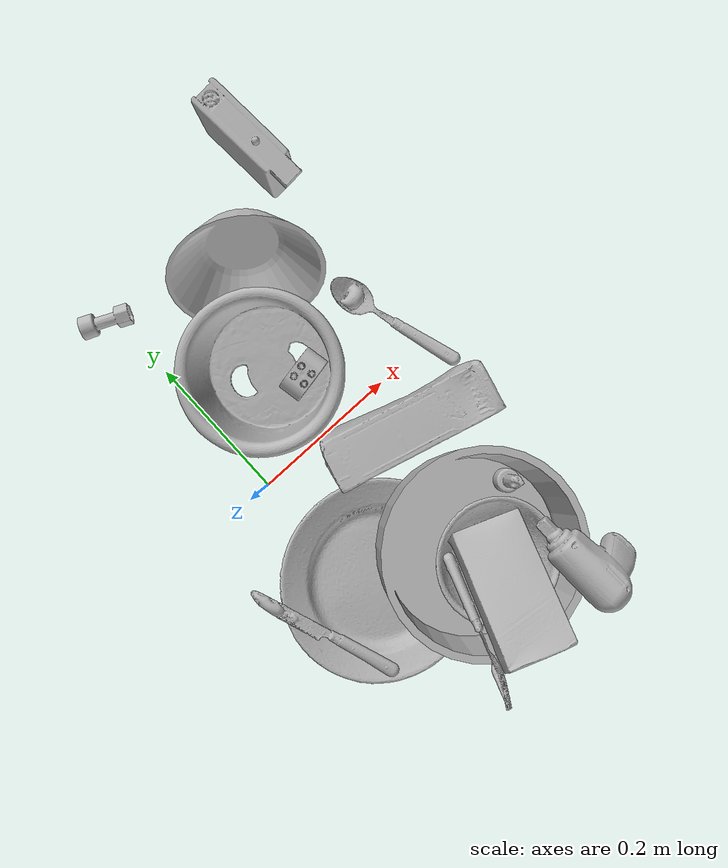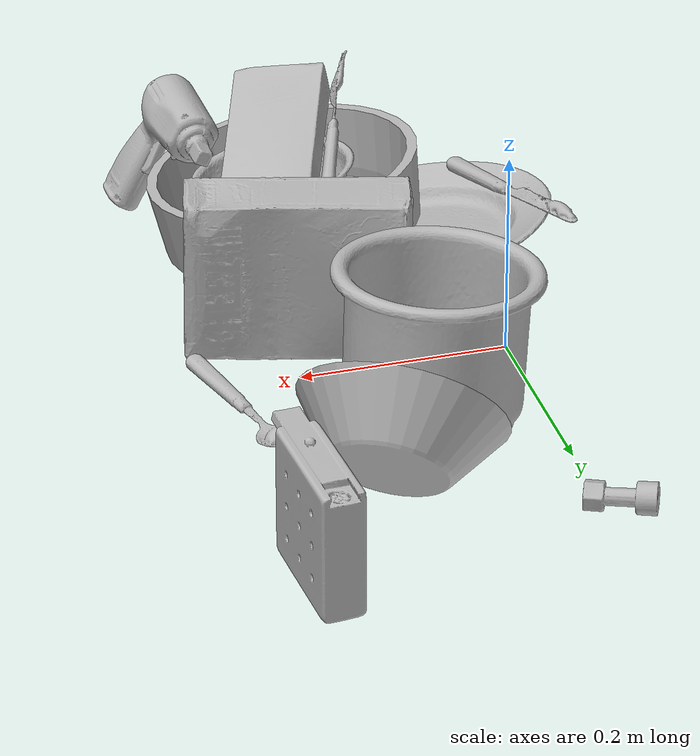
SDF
<sdf version="1.4">
  <world name="default">
    <light name="light1" type="point">
      <pose>0 0 1 0 0 0</pose>
      <diffuse>3 3 3 1</diffuse>
      <specular>3 3 3 1</specular>
    </light>
    <light name="light2" type="point">
      <pose>0 0.5 2 0 0 0</pose>
      <diffuse>1 1 1 1</diffuse>
      <specular>1 1 1 1</specular>
    </light>
    <light name="light3" type="point">
      <pose>0 0.5 2 0 0 0</pose>
      <diffuse>3 3 3 1</diffuse>
      <specular>3 3 3 1</specular>
    </light>
    <scene>
      <ambient>0.7 0.7 0.7</ambient>
    </scene>
    <model name="plate1">
      <link name="link_plate1">
        <collision name="default">
          <geometry>
            <mesh>
              <uri>model://plate/collision_meshes/collision.obj</uri>
              <scale>1.0 1.0 1.0</scale>
            </mesh>
          </geometry>
          <surface>
            <friction>
              <ode>
                <mu>0.5</mu>
                <mu2>0.5</mu2>
              </ode>
            </friction>
          <contact>
        <ode>
            <max_vel>0</max_vel>
            <min_depth>0.0001</min_depth>
            <kp>1e8</kp>
        </ode>
    </contact></surface>
        </collision>
        <visual name="default">
          <geometry>
            <mesh>
              <uri>model://plate/visual_meshes/visual.dae</uri>
              <scale>1.0 1.0 1.0</scale>
            </mesh>
          </geometry>
        </visual>
        <inertial>
          <mass>0.11001742631196976</mass>
          <pose>-0.0006044686888344586 0.000278257648460567 -0.0010561998933553696 0.00221878912528286 -0.0032254756485070152 0.4526088917028743</pose>
          <inertia>
            <ixx>0.00051466376</ixx>
            <iyy>0.0005097412</iyy>
            <izz>0.0010066056</izz>
            <ixy>0</ixy>
            <ixz>0</ixz>
            <iyz>0</iyz>
          </inertia>
        </inertial>
      </link>
      <pose>0.028337204828858376 -0.18616735935211182 0.028951900079846382 -0.05131962451191956 0.1959186007415022 -0.9111378049618767</pose>
    </model>
    <model name="plate2">
      <link name="link_plate2">
        <collision name="default">
          <geometry>
            <mesh>
              <uri>model://pan_tefal/collision_meshes/collision.obj</uri>
              <scale>1.0 1.0 1.0</scale>
            </mesh>
          </geometry>
          <surface>
            <friction>
              <ode>
                <mu>0.5</mu>
                <mu2>0.5</mu2>
              </ode>
            </friction>
          <contact>
        <ode>
            <max_vel>0</max_vel>
            <min_depth>0.0001</min_depth>
            <kp>1e8</kp>
        </ode>
    </contact></surface>
        </collision>
        <visual name="default">
          <geometry>
            <mesh>
              <uri>model://pan_tefal/visual_meshes/visual.dae</uri>
              <scale>1.0 1.0 1.0</scale>
            </mesh>
          </geometry>
        </visual>
        <inertial>
          <mass>1.457576870918274</mass>
          <pose>-0.00018002426077146083 3.279360316810198e-05 -0.008514936082065105 0.0008190306735146073 -0.00033013365411173643 -0.33185917339097665</pose>
          <inertia>
            <ixx>0.010061583</ixx>
            <iyy>0.01012645</iyy>
            <izz>0.01852144</izz>
            <ixy>0</ixy>
            <ixz>0</ixz>
            <iyz>0</iyz>
          </inertia>
        </inertial>
      </link>
      <pose>0.14705725014209747 -0.23748661577701569 0.05673494189977646 0.11504628215935589 0.12659082961725682 0.06018741386620259</pose>
    </model>
    <model name="bowl1">
      <link name="link_bowl1">
        <collision name="default">
          <geometry>
            <mesh>
              <uri>model://bowl_a/collision_meshes/collision.obj</uri>
              <scale>1.0 1.0 1.0</scale>
            </mesh>
          </geometry>
          <surface>
            <friction>
              <ode>
                <mu>0.5</mu>
                <mu2>0.5</mu2>
              </ode>
            </friction>
          <contact>
        <ode>
            <max_vel>0</max_vel>
            <min_depth>0.0001</min_depth>
            <kp>1e8</kp>
        </ode>
    </contact></surface>
        </collision>
        <visual name="default">
          <geometry>
            <mesh>
              <uri>model://bowl_a/visual_meshes/visual.dae</uri>
              <scale>1.0 1.0 1.0</scale>
            </mesh>
          </geometry>
        </visual>
        <inertial>
          <mass>0.29746556282043457</mass>
          <pose>0.0002786756958812475 4.7311452362919226e-05 -0.0013765294570475817 -0.0009805438325310402 -0.001093816410149737 -0.19123071729823712</pose>
          <inertia>
            <ixx>0.0008468981</ixx>
            <iyy>0.00085209764</iyy>
            <izz>0.0015062407</izz>
            <ixy>0</ixy>
            <ixz>0</ixz>
            <iyz>0</iyz>
          </inertia>
        </inertial>
      </link>
      <pose>0.1748204529285431 0.22752200067043304 0.06380802392959595 -0.15608975593865793 -0.9523729750508118 1.2269654598796238</pose>
    </model>
    <model name="bowl2">
      <link name="link_bowl2">
        <collision name="default">
          <geometry>
            <mesh>
              <uri>model://bowl/collision_meshes/collision.obj</uri>
              <scale>1.0 1.0 1.0</scale>
            </mesh>
          </geometry>
          <surface>
            <friction>
              <ode>
                <mu>0.5</mu>
                <mu2>0.5</mu2>
              </ode>
            </friction>
          <contact>
        <ode>
            <max_vel>0</max_vel>
            <min_depth>0.0001</min_depth>
            <kp>1e8</kp>
        </ode>
    </contact></surface>
        </collision>
        <visual name="default">
          <geometry>
            <mesh>
              <uri>model://bowl/visual_meshes/visual.dae</uri>
              <scale>1.0 1.0 1.0</scale>
            </mesh>
          </geometry>
        </visual>
        <inertial>
          <mass>0.12348172068595886</mass>
          <pose>0.0002044529828708619 -0.0010302055161446333 -0.0008042656118050218 -0.01576411854188812 0.014546757923928972 0.7140383762832406</pose>
          <inertia>
            <ixx>0.0002836472</ixx>
            <iyy>0.00027730947</iyy>
            <izz>0.00047719217</izz>
            <ixy>0</ixy>
            <ixz>0</ixz>
            <iyz>0</iyz>
          </inertia>
        </inertial>
      </link>
      <pose>0.15307871997356415 -0.2580987215042114 0.051310546696186066 0.04128068416711108 -0.18208633499467405 2.2374106003892935</pose>
    </model>
    <model name="silverware1">
      <link name="link_silverware1">
        <collision name="default">
          <geometry>
            <mesh>
              <uri>model://spoon/collision_meshes/collision.obj</uri>
              <scale>1.0 1.0 1.0</scale>
            </mesh>
          </geometry>
          <surface>
            <friction>
              <ode>
                <mu>0.5</mu>
                <mu2>0.5</mu2>
              </ode>
            </friction>
          <contact>
        <ode>
            <max_vel>0</max_vel>
            <min_depth>0.0001</min_depth>
            <kp>1e8</kp>
        </ode>
    </contact></surface>
        </collision>
        <visual name="default">
          <geometry>
            <mesh>
              <uri>model://spoon/visual_meshes/visual.dae</uri>
              <scale>1.0 1.0 1.0</scale>
            </mesh>
          </geometry>
        </visual>
        <inertial>
          <mass>0.03284037858247757</mass>
          <pose>-0.005526319611817598 -0.001603417214937508 -0.000727165665011853 0.03521671059584429 -0.039065856285187314 0.0061506144474233635</pose>
          <inertia>
            <ixx>1.8266356e-06</ixx>
            <iyy>0.00012495652</iyy>
            <izz>0.00012585736</izz>
            <ixy>0</ixy>
            <ixz>0</ixz>
            <iyz>0</iyz>
          </inertia>
        </inertial>
      </link>
      <pose>0.26391223073005676 0.04603327810764313 0.008385264314711094 0.006728850887120785 0.02689299486917776 1.8478797729652534</pose>
    </model>
    <model name="box1">
      <link name="link_box1">
        <collision name="default">
          <geometry>
            <mesh>
              <uri>model://cracker_box/collision_meshes/collision.obj</uri>
              <scale>1.0 1.0 1.0</scale>
            </mesh>
          </geometry>
          <surface>
            <friction>
              <ode>
                <mu>0.5</mu>
                <mu2>0.5</mu2>
              </ode>
            </friction>
          <contact>
        <ode>
            <max_vel>0</max_vel>
            <min_depth>0.0001</min_depth>
            <kp>1e8</kp>
        </ode>
    </contact></surface>
        </collision>
        <visual name="default">
          <geometry>
            <mesh>
              <uri>model://cracker_box/visual_meshes/visual.dae</uri>
              <scale>1.0 1.0 1.0</scale>
            </mesh>
          </geometry>
        </visual>
        <inertial>
          <mass>2.434305191040039</mass>
          <pose>0.0009464126778766513 0.0002543424488976598 -0.0017029534792527556 -0.0003162073658586955 -0.011106488669321329 0.0025467952332158075</pose>
          <inertia>
            <ixx>0.0061917845</ixx>
            <iyy>0.010223853</iyy>
            <izz>0.014590379</izz>
            <ixy>0</ixy>
            <ixz>0</ixz>
            <iyz>0</iyz>
          </inertia>
        </inertial>
      </link>
      <pose>0.18640799820423126 -0.0578545518219471 0.08175764977931976 1.545234597728525 0.009040078170302309 2.8944011895616244</pose>
    </model>
    <model name="box2">
      <link name="link_box2">
        <collision name="default">
          <geometry>
            <mesh>
              <uri>model://sugar_box/collision_meshes/collision.obj</uri>
              <scale>1.0 1.0 1.0</scale>
            </mesh>
          </geometry>
          <surface>
            <friction>
              <ode>
                <mu>0.5</mu>
                <mu2>0.5</mu2>
              </ode>
            </friction>
          <contact>
        <ode>
            <max_vel>0</max_vel>
            <min_depth>0.0001</min_depth>
            <kp>1e8</kp>
        </ode>
    </contact></surface>
        </collision>
        <visual name="default">
          <geometry>
            <mesh>
              <uri>model://sugar_box/visual_meshes/visual.dae</uri>
              <scale>1.0 1.0 1.0</scale>
            </mesh>
          </geometry>
        </visual>
        <inertial>
          <mass>0.5700510144233704</mass>
          <pose>0.0010343727190047503 3.849109634757042e-05 -0.00036364805418998003 -0.00040462615490547663 0.0010506634056045778 0.0026153790218534064</pose>
          <inertia>
            <ixx>0.00047496508</ixx>
            <iyy>0.0015351841</iyy>
            <izz>0.0018377992</izz>
            <ixy>0</ixy>
            <ixz>0</ixz>
            <iyz>0</iyz>
          </inertia>
        </inertial>
      </link>
      <pose>0.14427754282951355 -0.2933700382709503 0.09047804772853851 0.14294048753754665 0.2822911635875591 1.2148441857092764</pose>
    </model>
    <model name="cup1">
      <link name="link_cup1">
        <collision name="default">
          <geometry>
            <mesh>
              <uri>model://i_cups/collision_meshes/collision.obj</uri>
              <scale>2.0 2.0 2.0</scale>
            </mesh>
          </geometry>
          <surface>
            <friction>
              <ode>
                <mu>0.5</mu>
                <mu2>0.5</mu2>
              </ode>
            </friction>
          <contact>
        <ode>
            <max_vel>0</max_vel>
            <min_depth>0.0001</min_depth>
            <kp>1e8</kp>
        </ode>
    </contact></surface>
        </collision>
        <visual name="default">
          <geometry>
            <mesh>
              <uri>model://i_cups/visual_meshes/visual.dae</uri>
              <scale>2.0 2.0 2.0</scale>
            </mesh>
          </geometry>
        </visual>
        <inertial>
          <mass>0.8749163746833801</mass>
          <pose>0.0002248019736725837 0.0003359491820447147 -0.0017158064292743802 -0.028982988446176382 -0.03987323668700188 -0.3459135059395342</pose>
          <inertia>
            <ixx>0.0048453393</ixx>
            <iyy>0.0048880302</iyy>
            <izz>0.0054154512</izz>
            <ixy>0</ixy>
            <ixz>0</ixz>
            <iyz>0</iyz>
          </inertia>
        </inertial>
      </link>
      <pose>0.10229910165071487 0.1062382161617279 0.08208061009645462 -0.10133458599868372 0.004933015930208881 2.5000925828218543</pose>
    </model>
    <model name="silverware2">
      <link name="link_silverware2">
        <collision name="default">
          <geometry>
            <mesh>
              <uri>model://fork/collision_meshes/collision.obj</uri>
              <scale>1.0 1.0 1.0</scale>
            </mesh>
          </geometry>
          <surface>
            <friction>
              <ode>
                <mu>0.5</mu>
                <mu2>0.5</mu2>
              </ode>
            </friction>
          <contact>
        <ode>
            <max_vel>0</max_vel>
            <min_depth>0.0001</min_depth>
            <kp>1e8</kp>
        </ode>
    </contact></surface>
        </collision>
        <visual name="default">
          <geometry>
            <mesh>
              <uri>model://fork/visual_meshes/visual.dae</uri>
              <scale>1.0 1.0 1.0</scale>
            </mesh>
          </geometry>
        </visual>
        <inertial>
          <mass>0.021080315113067627</mass>
          <pose>-0.02957003377377987 0.00046588227269239724 0.0003218860656488687 -0.013550583544297463 -0.010977830979267335 0.014453899239778455</pose>
          <inertia>
            <ixx>7.3898417e-07</ixx>
            <iyy>5.503463e-05</iyy>
            <izz>5.5365177e-05</izz>
            <ixy>0</ixy>
            <ixz>0</ixz>
            <iyz>0</iyz>
          </inertia>
        </inertial>
      </link>
      <pose>0.08411167562007904 -0.3007666766643524 0.0954471006989479 1.8937662541714584 -0.2796067053732354 -1.900491572427257</pose>
    </model>
    <model name="silverware3">
      <link name="link_silverware3">
        <collision name="default">
          <geometry>
            <mesh>
              <uri>model://knife/collision_meshes/collision.obj</uri>
              <scale>1.0 1.0 1.0</scale>
            </mesh>
          </geometry>
          <surface>
            <friction>
              <ode>
                <mu>0.5</mu>
                <mu2>0.5</mu2>
              </ode>
            </friction>
          <contact>
        <ode>
            <max_vel>0</max_vel>
            <min_depth>0.0001</min_depth>
            <kp>1e8</kp>
        </ode>
    </contact></surface>
        </collision>
        <visual name="default">
          <geometry>
            <mesh>
              <uri>model://knife/visual_meshes/visual.dae</uri>
              <scale>1.0 1.0 1.0</scale>
            </mesh>
          </geometry>
        </visual>
        <inertial>
          <mass>0.03557601198554039</mass>
          <pose>-0.023785259574651718 0.0015275123296305537 5.062016498413868e-05 0.07305791577183936 0.01724842049726123 -0.007409813921982597</pose>
          <inertia>
            <ixx>1.0097915e-06</ixx>
            <iyy>0.00013667726</iyy>
            <izz>0.00013700248</izz>
            <ixy>0</ixy>
            <ixz>0</ixz>
            <iyz>0</iyz>
          </inertia>
        </inertial>
      </link>
      <pose>-0.06589128822088242 -0.18636934459209442 0.059412334114313126 -3.104901597604266 -0.14879264883320206 1.8769378986587169</pose>
    </model>
    <model name="toy1">
      <link name="link_toy1">
        <collision name="default">
          <geometry>
            <mesh>
              <uri>model://b_toy_airplane/collision_meshes/collision.obj</uri>
              <scale>1.0 1.0 1.0</scale>
            </mesh>
          </geometry>
          <surface>
            <friction>
              <ode>
                <mu>0.5</mu>
                <mu2>0.5</mu2>
              </ode>
            </friction>
          <contact>
        <ode>
            <max_vel>0</max_vel>
            <min_depth>0.0001</min_depth>
            <kp>1e8</kp>
        </ode>
    </contact></surface>
        </collision>
        <visual name="default">
          <geometry>
            <mesh>
              <uri>model://b_toy_airplane/visual_meshes/visual.dae</uri>
              <scale>1.0 1.0 1.0</scale>
            </mesh>
          </geometry>
        </visual>
        <inertial>
          <mass>0.2131570726633072</mass>
          <pose>0.005081363953649998 0.00401558680459857 0.00954306498169899 -0.040018114912876775 -0.04022188568687408 -0.5601502887595425</pose>
          <inertia>
            <ixx>0.00039573</ixx>
            <iyy>0.00015817716</iyy>
            <izz>0.00049232744</izz>
            <ixy>0</ixy>
            <ixz>0</ixz>
            <iyz>0</iyz>
          </inertia>
        </inertial>
      </link>
      <pose>0.23450033366680145 -0.3490745425224304 0.07837926596403122 1.131255177289332 0.051315257790849875 1.6303220509596046</pose>
    </model>
    <model name="toy2">
      <link name="link_toy2">
        <collision name="default">
          <geometry>
            <mesh>
              <uri>model://nine_hole_peg_test/collision_meshes/collision.obj</uri>
              <scale>1.0 1.0 1.0</scale>
            </mesh>
          </geometry>
          <surface>
            <friction>
              <ode>
                <mu>0.5</mu>
                <mu2>0.5</mu2>
              </ode>
            </friction>
          <contact>
        <ode>
            <max_vel>0</max_vel>
            <min_depth>0.0001</min_depth>
            <kp>1e8</kp>
        </ode>
    </contact></surface>
        </collision>
        <visual name="default">
          <geometry>
            <mesh>
              <uri>model://nine_hole_peg_test/visual_meshes/visual.dae</uri>
              <scale>1.0 1.0 1.0</scale>
            </mesh>
          </geometry>
        </visual>
        <inertial>
          <mass>0.9403080940246582</mass>
          <pose>-0.004617387894541025 -0.009647617116570473 2.646069333422929e-05 -0.0014666798116952742 0.0007194174694617774 -0.6342424398534297</pose>
          <inertia>
            <ixx>0.0014703267</ixx>
            <iyy>0.0013728285</iyy>
            <izz>0.0025764457</izz>
            <ixy>0</ixy>
            <ixz>0</ixz>
            <iyz>0</iyz>
          </inertia>
        </inertial>
      </link>
      <pose>0.27507340908050537 0.32476821541786194 0.06864657998085022 -1.5290145446982146 -1.5638008196678814 -1.5445829319357844</pose>
    </model>
    <model name="toy3">
      <link name="link_toy3">
        <collision name="default">
          <geometry>
            <mesh>
              <uri>model://a_lego_duplo/collision_meshes/collision.obj</uri>
              <scale>1.0 1.0 1.0</scale>
            </mesh>
          </geometry>
          <surface>
            <friction>
              <ode>
                <mu>0.5</mu>
                <mu2>0.5</mu2>
              </ode>
            </friction>
          <contact>
        <ode>
            <max_vel>0</max_vel>
            <min_depth>0.0001</min_depth>
            <kp>1e8</kp>
        </ode>
    </contact></surface>
        </collision>
        <visual name="default">
          <geometry>
            <mesh>
              <uri>model://a_lego_duplo/visual_meshes/visual.dae</uri>
              <scale>1.0 1.0 1.0</scale>
            </mesh>
          </geometry>
        </visual>
        <inertial>
          <mass>0.023130550980567932</mass>
          <pose>-0.00011337705655023456 0.00018517566786613315 0.00036926098982803524 -0.014116995996849858 -0.00012565876120078728 6.143831699070756e-05</pose>
          <inertia>
            <ixx>2.9655212e-06</ixx>
            <iyy>6.643419e-06</iyy>
            <izz>8.229349e-06</izz>
            <ixy>0</ixy>
            <ixz>0</ixz>
            <iyz>0</iyz>
          </inertia>
        </inertial>
      </link>
      <pose>0.13153062760829926 0.07437878847122192 0.03525201976299286 -0.04451308555411008 0.07453393337401641 -2.948687928187085</pose>
    </model>
    <model name="toy4">
      <link name="link_toy4">
        <collision name="default">
          <geometry>
            <mesh>
              <uri>model://c_toy_airplane/collision_meshes/collision.obj</uri>
              <scale>1.0 1.0 1.0</scale>
            </mesh>
          </geometry>
          <surface>
            <friction>
              <ode>
                <mu>0.5</mu>
                <mu2>0.5</mu2>
              </ode>
            </friction>
          <contact>
        <ode>
            <max_vel>0</max_vel>
            <min_depth>0.0001</min_depth>
            <kp>1e8</kp>
        </ode>
    </contact></surface>
        </collision>
        <visual name="default">
          <geometry>
            <mesh>
              <uri>model://c_toy_airplane/visual_meshes/visual.dae</uri>
              <scale>1.0 1.0 1.0</scale>
            </mesh>
          </geometry>
        </visual>
        <inertial>
          <mass>0.016945533454418182</mass>
          <pose>-0.00023024251277092844 -4.426267139479023e-07 -0.006080526392906904 -0.00619248279943298 -0.01679780513617648 0.7654772671109313</pose>
          <inertia>
            <ixx>7.781044e-06</ixx>
            <iyy>7.759084e-06</iyy>
            <izz>1.826835e-06</izz>
            <ixy>0</ixy>
            <ixz>0</ixz>
            <iyz>0</iyz>
          </inertia>
        </inertial>
      </link>
      <pose>-0.011880556121468544 0.298798531293869 0.014633286744356155 -1.6025284465510923 0.6180150262915051 -2.011663216775633</pose>
    </model>
    <model name="toy5">
      <link name="link_toy5">
        <collision name="default">
          <geometry>
            <mesh>
              <uri>model://d_toy_airplane/collision_meshes/collision.obj</uri>
              <scale>1.0 1.0 1.0</scale>
            </mesh>
          </geometry>
          <surface>
            <friction>
              <ode>
                <mu>0.5</mu>
                <mu2>0.5</mu2>
              </ode>
            </friction>
          <contact>
        <ode>
            <max_vel>0</max_vel>
            <min_depth>0.0001</min_depth>
            <kp>1e8</kp>
        </ode>
    </contact></surface>
        </collision>
        <visual name="default">
          <geometry>
            <mesh>
              <uri>model://d_toy_airplane/visual_meshes/visual.dae</uri>
              <scale>1.0 1.0 1.0</scale>
            </mesh>
          </geometry>
        </visual>
        <inertial>
          <mass>0.01782749593257904</mass>
          <pose>9.410309576196596e-05 -5.809334834339097e-05 -0.011728094890713692 0.00026697885790152897 0.00467897817044427 0.5194648744438854</pose>
          <inertia>
            <ixx>5.3443378e-06</ixx>
            <iyy>5.3483677e-06</iyy>
            <izz>1.6134899e-06</izz>
            <ixy>0</ixy>
            <ixz>0</ixz>
            <iyz>0</iyz>
          </inertia>
        </inertial>
      </link>
      <pose>0.23694300651550293 -0.20343057811260223 0.051344774663448334 0.15136155146272848 -0.07667371961970393 1.3761709817910184</pose>
    </model>
  <physics type="ode">
      <max_contacts>50</max_contacts>
      <ode>
        <solver>
          <type>quick</type>
          <iters>75</iters>
        </solver>
        <constraints>
          <contact_max_correcting_vel>0</contact_max_correcting_vel>
          <contact_surface_layer>0</contact_surface_layer>
        </constraints>
      </ode>
    </physics></world>
</sdf>
